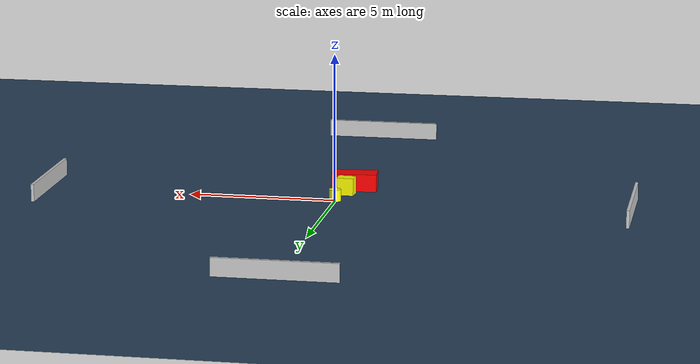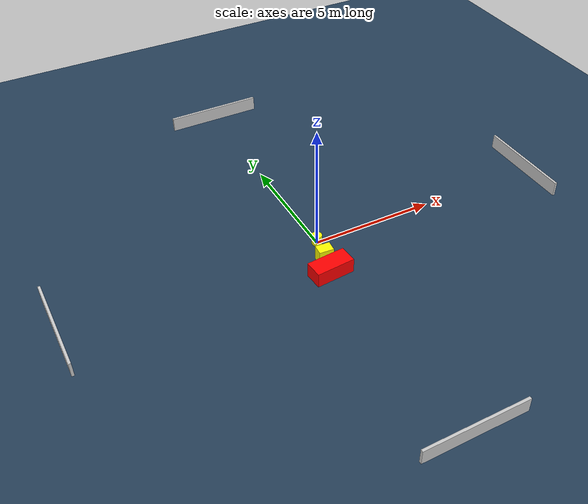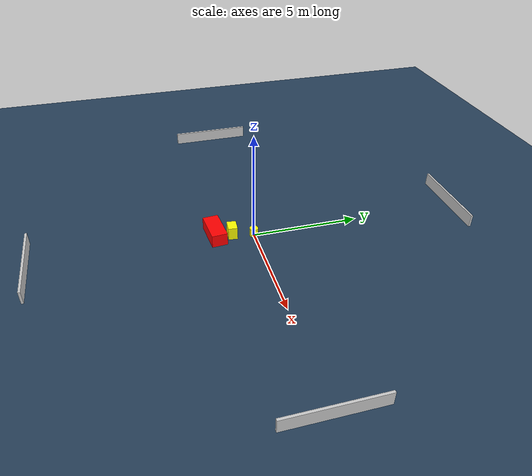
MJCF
<?xml version="1.0" ?>
<mujoco model="generated_environment">
  <option timestep="0.01" integrator="RK4" cone="elliptic"/>
  <default>
    <geom density="1"/>
  </default>
  <asset>
    <texture builtin="gradient" height="3072" name="skybox" rgb1="0.3 0.5 0.7" rgb2="0 0 0" type="skybox" width="512"/>
    <texture builtin="checker" height="300" name="groundplane" rgb1="0.2 0.3 0.4" rgb2="0.1 0.2 0.3" type="2d" width="300"/>
    <material name="groundplane" reflectance="0.2" texrepeat="5 5" texture="groundplane"/>
  </asset>
  <worldbody>
    <light dir="0 0 -1" directional="true" pos="0 0 1.5"/>
    <geom condim="3" friction="0.5 0.005 0.001" material="groundplane" name="floor" pos="0 0 0" size="0 0 0.05" type="plane"/>
    <body name="walls">
      <geom name="wall_1" condim="4" pos="-10.0 0.0 0.3" rgba="0.800000011920929 0.800000011920929 0.800000011920929 1.0" size="0.05 2.0 0.3" type="box"/>
      <geom name="wall_2" condim="4" pos="10.0 0.0 0.3" rgba="0.800000011920929 0.800000011920929 0.800000011920929 1.0" size="0.05 2.0 0.3" type="box"/>
      <geom name="wall_3" condim="4" pos="0.0 -10.0 0.3" rgba="0.800000011920929 0.800000011920929 0.800000011920929 1.0" size="2.0 0.05 0.3" type="box"/>
      <geom name="wall_4" condim="4" pos="0.0 10.0 0.3" rgba="0.800000011920929 0.800000011920929 0.800000011920929 1.0" size="2.0 0.05 0.3" type="box"/>
    </body>
    <body name="robot">
      <joint name="joint_x" type="slide" pos="0 0 0" axis="1 0 0"/>
      <joint name="joint_y" type="slide" pos="0 0 0" axis="0 1 0"/>
      <geom name="robot" type="cylinder" pos="0.0 0.0 0.2" size="0.2 0.2 0.0" mass="5.0" friction="1.0 0.005 0.0001" condim="4" rgba="1.0 1.0 0.0 1.0"/>
    </body>
    <body name="obstacle_1_movable">
      <geom name="obstacle_1_movable" condim="4" pos="-0.2084914232289468 -0.9761237414210777 0.3" euler="0 0 265.3920588167439" friction="0.0 0.005 0.001" rgba="1.0 1.0 0.0 1.0" size="0.21408317285513515 0.2893725915601933 0.3" type="box" mass="0.1"/>
      <joint type="free"/>
    </body>
    <body name="obstacle_2_static">
      <geom name="obstacle_2_static" condim="4" pos="-0.36751162215603894 -1.7394310669249897 0.3" euler="0 0 274.7887752388872" friction="0.0 0.005 0.001" rgba="1.0 0.0 0.0 1.0" size="0.36289133574735627 0.7747577974708866 0.3" type="box"/>
    </body>
  </worldbody>
  <actuator>
    <motor name="actuator_x" joint="joint_x" gear="1" ctrlrange="-1 1"/>
    <motor name="actuator_y" joint="joint_y" gear="1" ctrlrange="-1 1"/>
  </actuator>
</mujoco>
